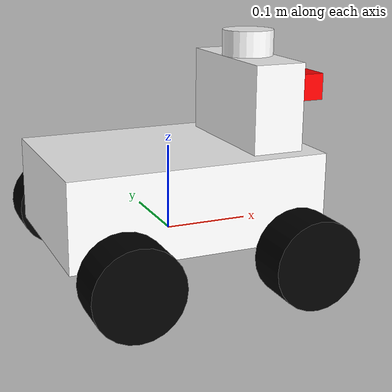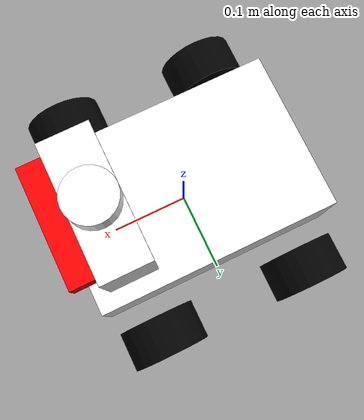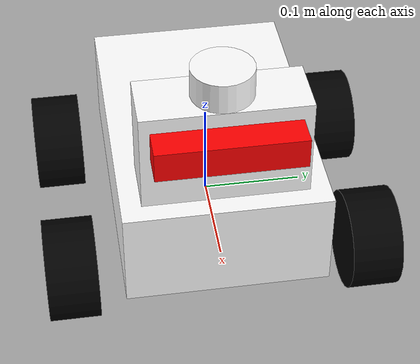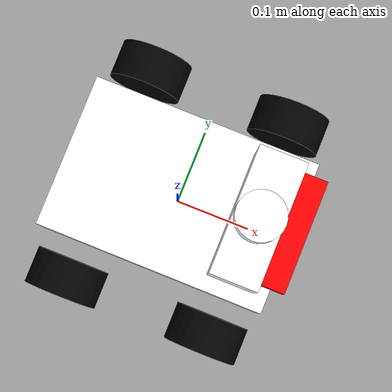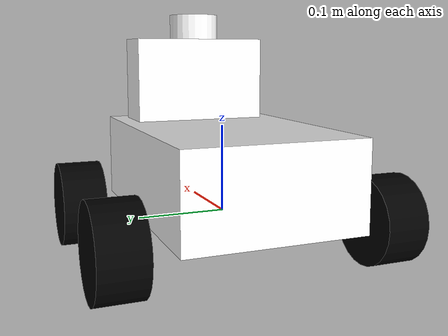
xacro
<?xml version="1.0"?>

<robot name="agilex_mini"
    xmlns:xacro="http://www.ros.org/wiki/xacro">

    <xacro:property name="length_wheel" value="0.05" />
    <xacro:property name="radius_wheel" value="0.05" />

    <xacro:property name="length_body" value="0.2" />
    <xacro:property name="width_body" value="0.3" />
    <xacro:property name="height_body" value="0.1" />

    <xacro:macro name="default_inertial" params="mass">
        <inertial>
            <mass value="${mass}" />
            <inertia ixx="1.0" ixy="0.0" ixz="0.0" iyy="1.0" iyz="0.0" izz="1.0" />
        </inertial>
    </xacro:macro>

    <link name="base_footprint">
        <visual>
            <geometry>
                <box size="0.001 0.001 0.001"/>
            </geometry>
            <origin rpy="0 0 0" xyz="0 0 0"/>
        </visual>
        <xacro:default_inertial mass="0.0001"/>
    </link>

    <gazebo reference="base_footprint">
        <material>Gazebo/Green</material>
        <turnGravityOff>false</turnGravityOff>
    </gazebo>

    <xacro:include filename="$(find agilex_description)/urdf/xacro/gazebo/agilex_mini_gazebo.gazebo" />

    <joint name="base_footprint_joint" type="fixed">
        <origin xyz="0 0 0" />
        <parent link="base_footprint" />
        <child link="base_link" />
    </joint>

    <link name="base_link">
        <visual>
            <geometry>
                <box size="${length_body} ${width_body} ${height_body}"/>
            </geometry>

            <origin rpy="0 0 1.5707" xyz="0 0 0.05"/>

            <material name="white">
                <color rgba="1 1 1 1"/>
            </material>
        </visual>

        <collision>
            <geometry>
                <box size="${length_body} ${width_body} ${height_body}"/>
            </geometry>
        </collision>
        <xacro:default_inertial mass="10"/>
    </link>

    <link name="wheel_1">
        <visual>
            <geometry>
                <cylinder length="${length_wheel}" radius="${radius_wheel}"/>
            </geometry>
            <origin rpy="0 0 0" xyz="0 0 0"/>
            <material name="black">
                <color rgba="0 0 0 1"/>
            </material>
        </visual>
        <collision>
            <geometry>
                <cylinder length="${length_wheel}" radius="${radius_wheel}"/>
            </geometry>
        </collision>
        <xacro:default_inertial mass="1"/>
    </link>

    <link name="wheel_2">
        <visual>
            <geometry>
                <cylinder length="${length_wheel}" radius="${radius_wheel}"/>
            </geometry>
            <origin rpy="0 0 0" xyz="0 0 0"/>
            <material name="black"/>
        </visual>
        <collision>
            <geometry>
                <cylinder length="${length_wheel}" radius="${radius_wheel}"/>
            </geometry>
        </collision>
        <xacro:default_inertial mass="1"/>

    </link>

    <link name="wheel_3">
        <visual>
            <geometry>
                <cylinder length="${length_wheel}" radius="${radius_wheel}"/>
            </geometry>

            <origin rpy="0 0 0" xyz="0 0 0"/>
            <material name="black"/>
        </visual>
        <collision>
            <geometry>
                <cylinder length="${length_wheel}" radius="${radius_wheel}"/>
            </geometry>
        </collision>
        <xacro:default_inertial mass="1"/>
    </link>

    <link name="wheel_4">
        <visual>
            <geometry>
                <cylinder length="${length_wheel}" radius="${radius_wheel}"/>
            </geometry>
            <origin rpy="0 0 0" xyz="0 0 0" />
            <material name="black"/>
        </visual>
        <collision>
            <geometry>
                <cylinder length="${length_wheel}" radius="${radius_wheel}"/>
            </geometry>
        </collision>
        <xacro:default_inertial mass="1"/>

    </link>

    <joint name="base_to_wheel1" type="continuous">
        <parent link="base_link"/>
        <child link="wheel_1"/>
        <origin rpy="-1.5707 0 0" xyz="${0.5 * length_body} ${0.5 * width_body} 0"/>
        <axis xyz="0 0 1" />
    </joint>

    <joint name="base_to_wheel2" type="continuous">
        <axis xyz="0 0 1" />
        <anchor xyz="0 0 0" />
        <limit effort="100" velocity="100" />
        <parent link="base_link"/>
        <child link="wheel_2"/>
        <origin rpy="-1.5707 0 0" xyz="-${0.5 * length_body} ${0.5 * width_body} 0"/>
    </joint>

    <joint name="base_to_wheel3" type="continuous">
        <parent link="base_link"/>
        <axis xyz="0 0 1" />
        <child link="wheel_3"/>
        <origin rpy="-1.5707 0 0" xyz="${0.5 * length_body} -${0.5 * width_body} 0"/>
    </joint>

    <joint name="base_to_wheel4" type="continuous">
        <parent link="base_link"/>
        <axis xyz="0 0 1" />
        <child link="wheel_4"/>
        <origin rpy="-1.5707 0 0" xyz="-${0.5 * length_body} -${0.5 * width_body} 0"/>
    </joint>

    <link name="sensor_support">
        <visual>
            <geometry>
                <box size=".06 .16 .10"/>
            </geometry>
            <material name="white">
                <color rgba="1 1 1 1"/>
            </material>
        </visual>
    </link>

    <joint name="sensor_support_joint" type="fixed">
        <parent link="base_link"/>
        <child link="sensor_support"/>
        <origin rpy="0 0 0" xyz="0.10 0 0.15"/>
    </joint>

    <link name="zed_camera">
        <visual>
            <origin xyz="0 0 0" rpy="0 0 0"/>
            <geometry>
                <box size=".03 .14 .03"/>
            </geometry>

            <material name="red">
                <color rgba="1 0 0 1"/>
            </material>
        </visual>

        <inertial>
            <mass value="1e-5" />
            <origin xyz="0 0 0" rpy="0 0 0"/>
            <inertia ixx="1e-6" ixy="0" ixz="0" iyy="1e-6" iyz="0" izz="1e-6" />
        </inertial>

        <collision>
            <origin xyz="0 0 0" rpy="0 0 0"/>
            <geometry>
                <box size="0.05 0.05 0.05"/>
            </geometry>
        </collision>
    </link>

    <joint name="zed_joint" type="fixed">
        <axis xyz="0 1 0" />
        <origin xyz="0.045 0 0.02" rpy="0 0 0"/>
        <parent link="sensor_support"/>
        <child link="zed_camera"/>
    </joint>

    <link name="rslidar">
        <visual>
            <geometry>
                <cylinder length = "0.03" radius = "0.03"/>
            </geometry>

            <material name="white">
                <color rgba="1 1 1 1"/>
            </material>
        </visual>

        <collision>
            <origin xyz="0 0 0" rpy="0 0 0"/>
            <geometry>
                <cylinder length = "0.03" radius = "0.03"/>
            </geometry>
        </collision>

        <inertial>
            <mass value="1e-5" />
            <origin xyz="0 0 0" rpy="0 0 0"/>
            <inertia ixx="1e-6" ixy="0" ixz="0" iyy="1e-6" iyz="0" izz="1e-6" />
        </inertial>
    </link>

    <joint name="rslidar_joint" type="fixed">
        <axis xyz="0 1 0" />
        <origin xyz="0 0 0.065" rpy="0 0 0"/>
        <parent link="sensor_support"/>
        <child link="rslidar"/>
    </joint>

</robot>
